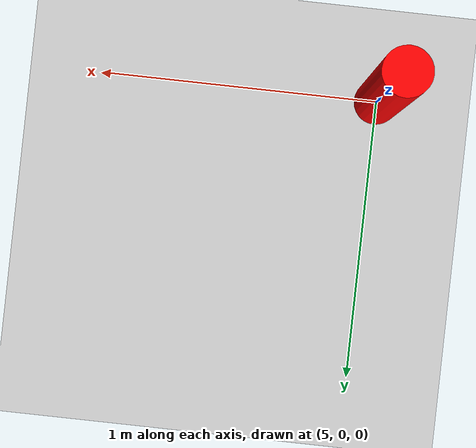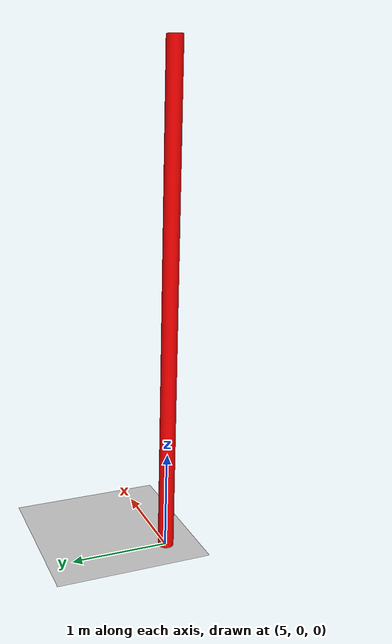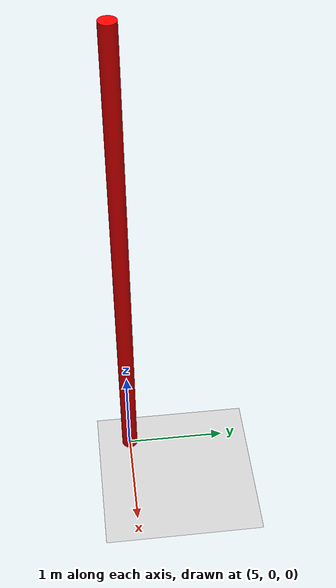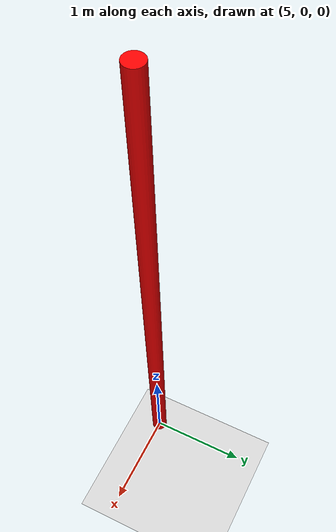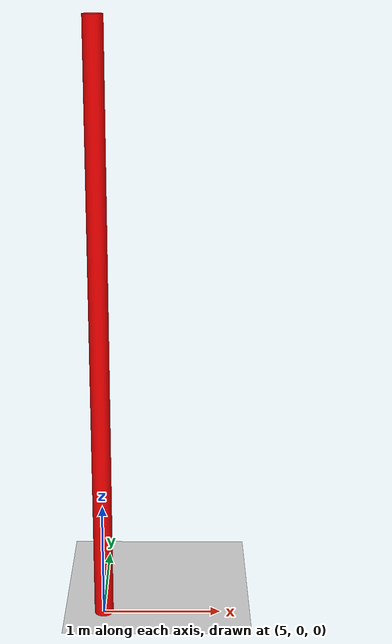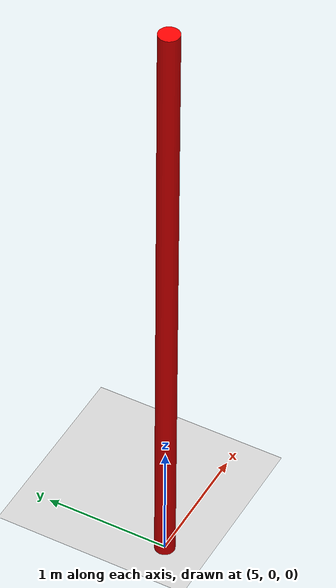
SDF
<?xml version="1.0" ?>
<sdf version="1.5">
  <world name="default">
    <!-- A global light source -->
    <include>
      <uri>model://sun</uri>
    </include>
    <!-- A ground plane -->
    <include>
      <uri>model://ground_plane</uri>
    </include>
    <include>
      <uri>model://asphalt_plane</uri>
    </include>
    <physics name='default_physics' default='0' type='ode'>
      <gravity>0 0 -9.8066</gravity>
      <ode>
        <solver>
          <type>quick</type>
          <iters>10</iters>
          <sor>1.3</sor>
          <use_dynamic_moi_rescaling>0</use_dynamic_moi_rescaling>
        </solver>
        <constraints>
          <cfm>0</cfm>
          <erp>0.2</erp>
          <contact_max_correcting_vel>100</contact_max_correcting_vel>
          <contact_surface_layer>0.001</contact_surface_layer>
        </constraints>
      </ode>
      <max_step_size>0.004</max_step_size>
      <real_time_factor>1</real_time_factor>
      <real_time_update_rate>250</real_time_update_rate>
      <magnetic_field>6.0e-6 2.3e-5 -4.2e-5</magnetic_field>
    </physics>
    <!-- Red perching pole at (5, 0), 16cm diameter -->
    <include>
      <uri>model://perching_pole_16cm_red</uri>
      <pose>5 0 0 0 0 0</pose>
    </include>
  </world>
</sdf>

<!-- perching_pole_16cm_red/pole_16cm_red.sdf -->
<sdf version="1.6">
  <model name="perching_pole_16cm_red">
    <static>true</static>
    <link name="pole_link">
      <pose>0 0 2.5 0 0 0</pose>
      <inertial>
        <pose>0 0 0 0 0 0</pose>
        <mass>1.0</mass>
        <inertia>
          <ixx>0.001</ixx>
          <ixy>0</ixy>
          <ixz>0</ixz>
          <iyy>0.001</iyy>
          <iyz>0</iyz>
          <izz>0.001</izz>
        </inertia>
      </inertial>
      <collision name="pole_collision">
        <pose>0 0 0 0 0 0</pose>
        <geometry>
          <cylinder>
            <radius>0.08</radius>
            <length>5.0</length>
          </cylinder>
        </geometry>
        <surface>
          <friction>
            <ode>
              <mu>100.0</mu>
              <mu2>10.0</mu2>
              <fdir1>0 0 1</fdir1>
            </ode>
            <torsional>
              <coefficient>1.0</coefficient>
              <use_patch_radius>false</use_patch_radius>
              <surface_radius>0.08</surface_radius>
              <ode>
                <slip>0.0</slip>
              </ode>
            </torsional>
          </friction>
          <bounce>
            <restitution_coefficient>0.0</restitution_coefficient>
            <threshold>0.001</threshold>
          </bounce>
          <contact>
            <ode>
              <kp>50000.0</kp>
              <kd>100.0</kd>
              <max_vel>0.01</max_vel>
              <min_depth>0.001</min_depth>
            </ode>
          </contact>
        </surface>
      </collision>
      <visual name="pole_visual">
        <pose>0 0 0 0 0 0</pose>
        <geometry>
          <cylinder>
            <radius>0.08</radius>
            <length>5.0</length>
          </cylinder>
        </geometry>
        <material>
          <ambient>1.0 0.0 0.0 1</ambient>
          <diffuse>1.0 0.0 0.0 1</diffuse>
          <specular>0.1 0.1 0.1 1</specular>
          <emissive>0.8 0.0 0.0 1</emissive>
        </material>
      </visual>
    </link>
  </model>
</sdf>
